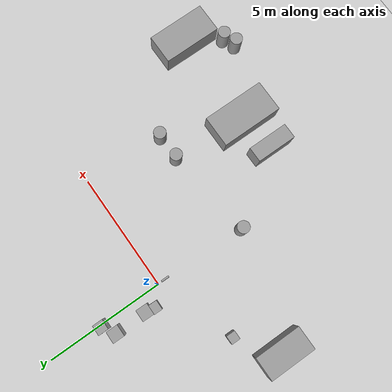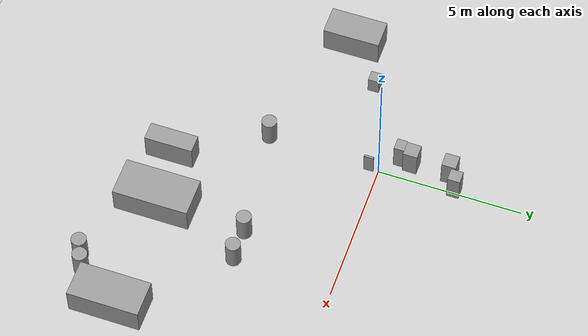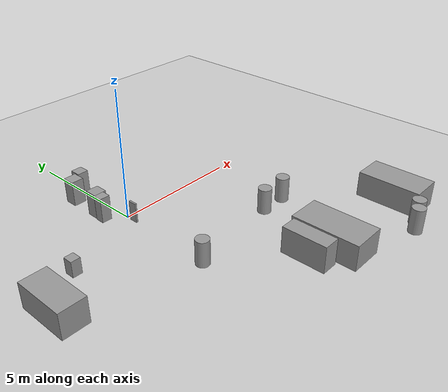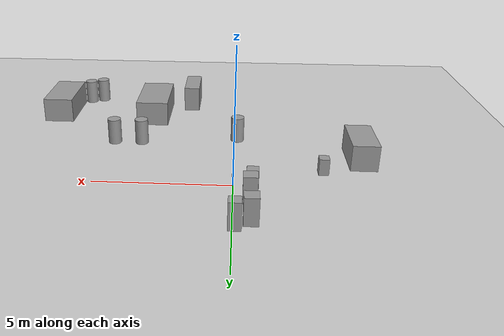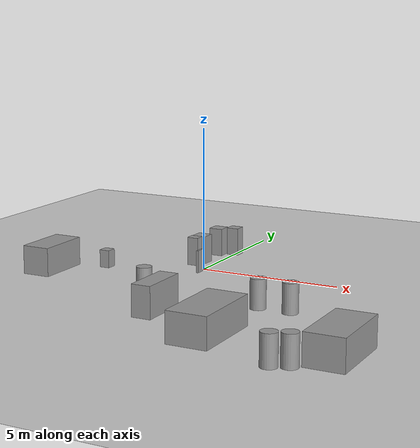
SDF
<sdf version="1.9">
 <world name="default">
  <model name="ground_plane">
   <static>true</static>
   <link name="link">
    <collision name="collision">
     <geometry><plane><normal>0 0 1</normal><size>100 100</size></plane></geometry>
     <surface><friction><ode><mu>100</mu><mu2>50</mu2></ode></friction></surface>
    </collision>
    <visual name="visual">
     <cast_shadows>false</cast_shadows>
     <geometry><plane><normal>0 0 1</normal><size>100 100</size></plane></geometry>
     <material>
      <script><uri>file://media/materials/scripts/gazebo.material</uri><name>Gazebo/Grey</name></script>
     </material>
    </visual>
   </link>
  </model>
  <model name="cma_gaveteiro_pequeno_0">
   <link name="link_0">
    <pose>0.25617400000000001 1.2505500000000001 0.5 0 0 0</pose>
    <inertial>
     <mass>0.18718599999999999</mass>
     <inertia>
      <ixx>0.018509999999999999</ixx>
      <ixy>0</ixy>
      <ixz>0</ixz>
      <iyy>0.018527600000000002</iyy>
      <iyz>0</iyz>
      <izz>0.00583981</izz>
     </inertia>
    </inertial>
    <visual name="visual">
     <geometry><box><size>0.43331700000000001 0.432002 1</size></box></geometry>
     <material>
      <lighting>true</lighting>
      <script><uri>file://media/materials/scripts/gazebo.material</uri><name>Gazebo/Grey</name></script>
      <ambient>0.300000012 0.300000012 0.300000012 1</ambient>
      <diffuse>0.699999988 0.699999988 0.699999988 1</diffuse>
      <specular>0.00999999978 0.00999999978 0.00999999978 1</specular>
      <emissive>0 0 0 1</emissive>
     </material>
    </visual>
    <collision name="collision">
     <geometry><box><size>0.43331700000000001 0.432002 1</size></box></geometry>
     <surface>
      <friction>
       <ode><mu>1</mu><mu2>1</mu2><fdir1>0 0 0</fdir1><slip1>0</slip1><slip2>0</slip2></ode>
       <torsional>
        <coefficient>1</coefficient>
        <patch_radius>0</patch_radius>
        <surface_radius>0</surface_radius>
        <use_patch_radius>true</use_patch_radius>
        <ode><slip>0</slip></ode>
       </torsional>
      </friction>
      <bounce><restitution_coefficient>0</restitution_coefficient><threshold>1000000</threshold></bounce>
      <contact>
       <collide_without_contact>false</collide_without_contact>
       <collide_without_contact_bitmask>1</collide_without_contact_bitmask>
       <collide_bitmask>1</collide_bitmask>
       <ode>
        <soft_cfm>0</soft_cfm>
        <soft_erp>0.20000000000000001</soft_erp>
        <kp>10000000000000</kp>
        <kd>1</kd>
        <max_vel>0.01</max_vel>
        <min_depth>0</min_depth>
       </ode>
       <bullet>
        <split_impulse>true</split_impulse>
        <split_impulse_penetration_threshold>-0.01</split_impulse_penetration_threshold>
        <soft_cfm>0</soft_cfm>
        <soft_erp>0.20000000000000001</soft_erp>
        <kp>10000000000000</kp>
        <kd>1</kd>
       </bullet>
      </contact>
     </surface>
    </collision>
   </link>
   <static>false</static>
   <pose>-0.33608399999999999 1.39513 5.0000000000000004e-06 -4.0000000000000007e-06 6.000000000000001e-06 -9.0000000000000019e-05</pose>
  </model>
  <model name="cma_gaveteiro">
   <link name="link_0">
    <pose>0 3.9999999999999998e-06 0 0 0 0</pose>
    <inertial>
     <mass>0.245086</mass>
     <inertia>
      <ixx>0.025418</ixx>
      <ixy>0</ixy>
      <ixz>0</ixz>
      <iyy>0.025441100000000001</iyy>
      <iyz>0</iyz>
      <izz>0.010011300000000001</izz>
     </inertia>
    </inertial>
    <visual name="visual">
     <geometry><box><size>0.49565700000000001 0.49449100000000001 1</size></box></geometry>
     <material>
      <lighting>true</lighting>
      <script><uri>file://media/materials/scripts/gazebo.material</uri><name>Gazebo/Grey</name></script>
      <ambient>0.300000012 0.300000012 0.300000012 1</ambient>
      <diffuse>0.699999988 0.699999988 0.699999988 1</diffuse>
      <specular>0.00999999978 0.00999999978 0.00999999978 1</specular>
      <emissive>0 0 0 1</emissive>
     </material>
    </visual>
    <collision name="collision">
     <geometry><box><size>0.49565700000000001 0.49449100000000001 1</size></box></geometry>
     <surface>
      <friction>
       <ode><mu>1</mu><mu2>1</mu2><fdir1>0 0 0</fdir1><slip1>0</slip1><slip2>0</slip2></ode>
       <torsional>
        <coefficient>1</coefficient>
        <patch_radius>0</patch_radius>
        <surface_radius>0</surface_radius>
        <use_patch_radius>true</use_patch_radius>
        <ode><slip>0</slip></ode>
       </torsional>
      </friction>
      <bounce><restitution_coefficient>0</restitution_coefficient><threshold>1000000</threshold></bounce>
      <contact>
       <collide_without_contact>false</collide_without_contact>
       <collide_without_contact_bitmask>1</collide_without_contact_bitmask>
       <collide_bitmask>1</collide_bitmask>
       <ode>
        <soft_cfm>0</soft_cfm>
        <soft_erp>0.20000000000000001</soft_erp>
        <kp>10000000000000</kp>
        <kd>1</kd>
        <max_vel>0.01</max_vel>
        <min_depth>0</min_depth>
       </ode>
       <bullet>
        <split_impulse>true</split_impulse>
        <split_impulse_penetration_threshold>-0.01</split_impulse_penetration_threshold>
        <soft_cfm>0</soft_cfm>
        <soft_erp>0.20000000000000001</soft_erp>
        <kp>10000000000000</kp>
        <kd>1</kd>
       </bullet>
      </contact>
     </surface>
    </collision>
   </link>
   <static>false</static>
   <pose>-0.59198399999999995 2.32619 0.50000100000000003 4.9999999999999996e-06 0 0.00034099999999999999</pose>
  </model>
  <model name="cma_gaveteiro_0">
   <link name="link_0">
    <pose>0 3.9999999999999998e-06 0 0 0 0</pose>
    <inertial>
     <mass>0.245086</mass>
     <inertia>
      <ixx>0.025418</ixx>
      <ixy>0</ixy>
      <ixz>0</ixz>
      <iyy>0.025441100000000001</iyy>
      <iyz>0</iyz>
      <izz>0.010011300000000001</izz>
     </inertia>
    </inertial>
    <visual name="visual">
     <geometry><box><size>0.49565700000000001 0.49449100000000001 1</size></box></geometry>
     <material>
      <lighting>true</lighting>
      <script><uri>file://media/materials/scripts/gazebo.material</uri><name>Gazebo/Grey</name></script>
      <ambient>0.300000012 0.300000012 0.300000012 1</ambient>
      <diffuse>0.699999988 0.699999988 0.699999988 1</diffuse>
      <specular>0.00999999978 0.00999999978 0.00999999978 1</specular>
      <emissive>0 0 0 1</emissive>
     </material>
    </visual>
    <collision name="collision">
     <geometry><box><size>0.49565700000000001 0.49449100000000001 1</size></box></geometry>
     <surface>
      <friction>
       <ode><mu>1</mu><mu2>1</mu2><fdir1>0 0 0</fdir1><slip1>0</slip1><slip2>0</slip2></ode>
       <torsional>
        <coefficient>1</coefficient>
        <patch_radius>0</patch_radius>
        <surface_radius>0</surface_radius>
        <use_patch_radius>true</use_patch_radius>
        <ode><slip>0</slip></ode>
       </torsional>
      </friction>
      <bounce><restitution_coefficient>0</restitution_coefficient><threshold>1000000</threshold></bounce>
      <contact>
       <collide_without_contact>false</collide_without_contact>
       <collide_without_contact_bitmask>1</collide_without_contact_bitmask>
       <collide_bitmask>1</collide_bitmask>
       <ode>
        <soft_cfm>0</soft_cfm>
        <soft_erp>0.20000000000000001</soft_erp>
        <kp>10000000000000</kp>
        <kd>1</kd>
        <max_vel>0.01</max_vel>
        <min_depth>0</min_depth>
       </ode>
       <bullet>
        <split_impulse>true</split_impulse>
        <split_impulse_penetration_threshold>-0.01</split_impulse_penetration_threshold>
        <soft_cfm>0</soft_cfm>
        <soft_erp>0.20000000000000001</soft_erp>
        <kp>10000000000000</kp>
        <kd>1</kd>
       </bullet>
      </contact>
     </surface>
    </collision>
   </link>
   <static>false</static>
   <pose>-0.577901 0.98403700000000005 0.499998 -1.3234889801271959e-23 -7.9999999999999996e-06 -0.014385999999999999</pose>
  </model>
  <model name="cma_sofa2">
   <link name="link_0">
    <pose>-4.6680000000000001 -2.0060099999999998 0.5 0 0 0</pose>
    <inertial>
     <mass>1.9868300000000001</mass>
     <inertia>
      <ixx>0.81914900000000002</ixx>
      <ixy>0</ixy>
      <ixz>0</ixz>
      <iyy>0.33113799999999999</iyy>
      <iyz>0</iyz>
      <izz>0.81914900000000002</izz>
     </inertia>
    </inertial>
    <visual name="visual">
     <geometry><box><size>1 1.98682 1</size></box></geometry>
     <material>
      <lighting>true</lighting>
      <script><uri>file://media/materials/scripts/gazebo.material</uri><name>Gazebo/Grey</name></script>
      <ambient>0.300000012 0.300000012 0.300000012 1</ambient>
      <diffuse>0.699999988 0.699999988 0.699999988 1</diffuse>
      <specular>0.00999999978 0.00999999978 0.00999999978 1</specular>
      <emissive>0 0 0 1</emissive>
     </material>
    </visual>
    <collision name="collision">
     <geometry><box><size>1 1.98682 1</size></box></geometry>
     <surface>
      <friction>
       <ode><mu>1</mu><mu2>1</mu2><fdir1>0 0 0</fdir1><slip1>0</slip1><slip2>0</slip2></ode>
       <torsional>
        <coefficient>1</coefficient>
        <patch_radius>0</patch_radius>
        <surface_radius>0</surface_radius>
        <use_patch_radius>true</use_patch_radius>
        <ode><slip>0</slip></ode>
       </torsional>
      </friction>
      <bounce><restitution_coefficient>0</restitution_coefficient><threshold>1000000</threshold></bounce>
      <contact>
       <collide_without_contact>false</collide_without_contact>
       <collide_without_contact_bitmask>1</collide_without_contact_bitmask>
       <collide_bitmask>1</collide_bitmask>
       <ode>
        <soft_cfm>0</soft_cfm>
        <soft_erp>0.20000000000000001</soft_erp>
        <kp>10000000000000</kp>
        <kd>1</kd>
        <max_vel>0.01</max_vel>
        <min_depth>0</min_depth>
       </ode>
       <bullet>
        <split_impulse>true</split_impulse>
        <split_impulse_penetration_threshold>-0.01</split_impulse_penetration_threshold>
        <soft_cfm>0</soft_cfm>
        <soft_erp>0.20000000000000001</soft_erp>
        <kp>10000000000000</kp>
        <kd>1</kd>
       </bullet>
      </contact>
     </surface>
    </collision>
   </link>
   <static>false</static>
   <pose>-0.095343999999999998 -0.40776899999999999 0 0 0 3.0000000000000001e-06</pose>
  </model>
  <model name="cma_apoio_s">
   <link name="link_1">
    <pose>-1.9376 -3.4655100000000001 0.5 0 0 0</pose>
    <inertial>
     <mass>0.087846300000000002</mass>
     <inertia>
      <ixx>0.0039269600000000002</ixx>
      <ixy>0</ixy>
      <ixz>0</ixz>
      <iyy>0.0038535599999999998</iyy>
      <iyz>0</iyz>
      <izz>0.0020587000000000001</izz>
     </inertia>
    </inertial>
    <visual name="visual">
     <geometry><box><size>0.36822300000000002 0.38159199999999999 0.62511799999999995</size></box></geometry>
     <material>
      <lighting>true</lighting>
      <script><uri>file://media/materials/scripts/gazebo.material</uri><name>Gazebo/Grey</name></script>
      <ambient>0.300000012 0.300000012 0.300000012 1</ambient>
      <diffuse>0.699999988 0.699999988 0.699999988 1</diffuse>
      <specular>0.00999999978 0.00999999978 0.00999999978 1</specular>
      <emissive>0 0 0 1</emissive>
     </material>
    </visual>
    <collision name="collision">
     <geometry><box><size>0.36822300000000002 0.38159199999999999 0.62511799999999995</size></box></geometry>
     <surface>
      <friction>
       <ode><mu>1</mu><mu2>1</mu2><fdir1>0 0 0</fdir1><slip1>0</slip1><slip2>0</slip2></ode>
       <torsional>
        <coefficient>1</coefficient>
        <patch_radius>0</patch_radius>
        <surface_radius>0</surface_radius>
        <use_patch_radius>true</use_patch_radius>
        <ode><slip>0</slip></ode>
       </torsional>
      </friction>
      <bounce><restitution_coefficient>0</restitution_coefficient><threshold>1000000</threshold></bounce>
      <contact>
       <collide_without_contact>false</collide_without_contact>
       <collide_without_contact_bitmask>1</collide_without_contact_bitmask>
       <collide_bitmask>1</collide_bitmask>
       <ode>
        <soft_cfm>0</soft_cfm>
        <soft_erp>0.20000000000000001</soft_erp>
        <kp>10000000000000</kp>
        <kd>1</kd>
        <max_vel>0.01</max_vel>
        <min_depth>0</min_depth>
       </ode>
       <bullet>
        <split_impulse>true</split_impulse>
        <split_impulse_penetration_threshold>-0.01</split_impulse_penetration_threshold>
        <soft_cfm>0</soft_cfm>
        <soft_erp>0.20000000000000001</soft_erp>
        <kp>10000000000000</kp>
        <kd>1</kd>
       </bullet>
      </contact>
     </surface>
    </collision>
   </link>
   <static>false</static>
   <pose>-1.3090999999999999 2.27101 -0.187442 -1.0000000000000002e-06 -1.0000000000000002e-06 -0.00081899999999999996</pose>
  </model>
  <model name="cma_sofa_ch2">
   <link name="link_0">
    <pose>7.5415200000000002 -9.0606100000000005 0.5 0 0 0</pose>
    <inertial>
     <mass>3.05287</mass>
     <inertia>
      <ixx>1.79053</ixx>
      <ixy>0</ixy>
      <ixz>0</ixz>
      <iyy>0.64708900000000003</iyy>
      <iyz>0</iyz>
      <izz>1.9288099999999999</izz>
     </inertia>
    </inertial>
    <visual name="visual">
     <geometry><box><size>1.2423500000000001 2.45729 1</size></box></geometry>
     <material>
      <lighting>true</lighting>
      <script><uri>file://media/materials/scripts/gazebo.material</uri><name>Gazebo/Grey</name></script>
      <ambient>0.300000012 0.300000012 0.300000012 1</ambient>
      <diffuse>0.699999988 0.699999988 0.699999988 1</diffuse>
      <specular>0.00999999978 0.00999999978 0.00999999978 1</specular>
      <emissive>0 0 0 1</emissive>
     </material>
    </visual>
    <collision name="collision">
     <geometry><box><size>1.2423500000000001 2.45729 1</size></box></geometry>
     <surface>
      <friction>
       <ode><mu>1</mu><mu2>1</mu2><fdir1>0 0 0</fdir1><slip1>0</slip1><slip2>0</slip2></ode>
       <torsional>
        <coefficient>1</coefficient>
        <patch_radius>0</patch_radius>
        <surface_radius>0</surface_radius>
        <use_patch_radius>true</use_patch_radius>
        <ode><slip>0</slip></ode>
       </torsional>
      </friction>
      <bounce><restitution_coefficient>0</restitution_coefficient><threshold>1000000</threshold></bounce>
      <contact>
       <collide_without_contact>false</collide_without_contact>
       <collide_without_contact_bitmask>1</collide_without_contact_bitmask>
       <collide_bitmask>1</collide_bitmask>
       <ode>
        <soft_cfm>0</soft_cfm>
        <soft_erp>0.20000000000000001</soft_erp>
        <kp>10000000000000</kp>
        <kd>1</kd>
        <max_vel>0.01</max_vel>
        <min_depth>0</min_depth>
       </ode>
       <bullet>
        <split_impulse>true</split_impulse>
        <split_impulse_penetration_threshold>-0.01</split_impulse_penetration_threshold>
        <soft_cfm>0</soft_cfm>
        <soft_erp>0.20000000000000001</soft_erp>
        <kp>10000000000000</kp>
        <kd>1</kd>
       </bullet>
      </contact>
     </surface>
    </collision>
   </link>
   <model name="cma_armarioL">
    <link name="link_0">
     <pose>3.6622599999999998 -6.1673499999999999 0.5 0 0 0</pose>
     <inertial>
      <mass>1.0482100000000001</mass>
      <inertia>
       <ixx>0.33087299999999997</ixx>
       <ixy>0</ixy>
       <ixz>0</ixz>
       <iyy>0.121777</iyy>
       <iyz>0</iyz>
       <izz>0.277949</izz>
      </inertia>
     </inertial>
     <visual name="visual">
      <geometry><box><size>0.62779200000000002 1.6697200000000001 1</size></box></geometry>
      <material>
       <lighting>true</lighting>
       <script><uri>file://media/materials/scripts/gazebo.material</uri><name>Gazebo/Grey</name></script>
       <ambient>0.300000012 0.300000012 0.300000012 1</ambient>
       <diffuse>0.699999988 0.699999988 0.699999988 1</diffuse>
       <specular>0.00999999978 0.00999999978 0.00999999978 1</specular>
       <emissive>0 0 0 1</emissive>
      </material>
     </visual>
     <collision name="collision">
      <geometry><box><size>0.62779200000000002 1.6697200000000001 1</size></box></geometry>
      <surface>
       <friction>
        <ode><mu>1</mu><mu2>1</mu2><fdir1>0 0 0</fdir1><slip1>0</slip1><slip2>0</slip2></ode>
        <torsional>
         <coefficient>1</coefficient>
         <patch_radius>0</patch_radius>
         <surface_radius>0</surface_radius>
         <use_patch_radius>true</use_patch_radius>
         <ode><slip>0</slip></ode>
        </torsional>
       </friction>
       <bounce><restitution_coefficient>0</restitution_coefficient><threshold>1000000</threshold></bounce>
       <contact>
        <collide_without_contact>false</collide_without_contact>
        <collide_without_contact_bitmask>1</collide_without_contact_bitmask>
        <collide_bitmask>1</collide_bitmask>
        <ode>
         <soft_cfm>0</soft_cfm>
         <soft_erp>0.20000000000000001</soft_erp>
         <kp>10000000000000</kp>
         <kd>1</kd>
         <max_vel>0.01</max_vel>
         <min_depth>0</min_depth>
        </ode>
        <bullet>
         <split_impulse>true</split_impulse>
         <split_impulse_penetration_threshold>-0.01</split_impulse_penetration_threshold>
         <soft_cfm>0</soft_cfm>
         <soft_erp>0.20000000000000001</soft_erp>
         <kp>10000000000000</kp>
         <kd>1</kd>
        </bullet>
       </contact>
      </surface>
     </collision>
    </link>
    <static>false</static>
    <pose>-1.9180299999999999 -2.9201100000000002 0.5 0 0 0</pose>
   </model>
   <model name="cma_cesto">
    <link name="link_1">
     <pose>-0.32965899999999998 -1.55494 0 0 0 0</pose>
     <inertial>
      <mass>0.267897</mass>
      <inertia>
       <ixx>0.026810199999999999</ixx>
       <ixy>0</ixy>
       <ixz>0</ixz>
       <iyy>0.026810199999999999</iyy>
       <iyz>0</iyz>
       <izz>0.0089711099999999992</izz>
      </inertia>
     </inertial>
     <visual name="visual">
      <geometry><cylinder><radius>0.25879200000000002</radius><length>1</length></cylinder></geometry>
      <material>
       <lighting>true</lighting>
       <script><uri>file://media/materials/scripts/gazebo.material</uri><name>Gazebo/Grey</name></script>
       <ambient>0.300000012 0.300000012 0.300000012 1</ambient>
       <diffuse>0.699999988 0.699999988 0.699999988 1</diffuse>
       <specular>0.00999999978 0.00999999978 0.00999999978 1</specular>
       <emissive>0 0 0 1</emissive>
      </material>
     </visual>
     <collision name="collision">
      <geometry><cylinder><radius>0.25879200000000002</radius><length>1</length></cylinder></geometry>
      <surface>
       <friction>
        <ode><mu>1</mu><mu2>1</mu2><fdir1>0 0 0</fdir1><slip1>0</slip1><slip2>0</slip2></ode>
        <torsional>
         <coefficient>1</coefficient>
         <patch_radius>0</patch_radius>
         <surface_radius>0</surface_radius>
         <use_patch_radius>true</use_patch_radius>
         <ode><slip>0</slip></ode>
        </torsional>
       </friction>
       <bounce><restitution_coefficient>0</restitution_coefficient><threshold>1000000</threshold></bounce>
       <contact>
        <collide_without_contact>false</collide_without_contact>
        <collide_without_contact_bitmask>1</collide_without_contact_bitmask>
        <collide_bitmask>1</collide_bitmask>
        <ode>
         <soft_cfm>0</soft_cfm>
         <soft_erp>0.20000000000000001</soft_erp>
         <kp>10000000000000</kp>
         <kd>1</kd>
         <max_vel>0.01</max_vel>
         <min_depth>0</min_depth>
        </ode>
        <bullet>
         <split_impulse>true</split_impulse>
         <split_impulse_penetration_threshold>-0.01</split_impulse_penetration_threshold>
         <soft_cfm>0</soft_cfm>
         <soft_erp>0.20000000000000001</soft_erp>
         <kp>10000000000000</kp>
         <kd>1</kd>
        </bullet>
       </contact>
      </surface>
     </collision>
    </link>
    <static>false</static>
    <pose>6.9793500000000002 -8.8850899999999999 0.5 0 0 0</pose>
   </model>
   <model name="cma_cesto_0">
    <link name="link_1">
     <pose>-0.32965899999999998 -1.55494 0 0 0 0</pose>
     <inertial>
      <mass>0.267897</mass>
      <inertia>
       <ixx>0.026810199999999999</ixx>
       <ixy>0</ixy>
       <ixz>0</ixz>
       <iyy>0.026810199999999999</iyy>
       <iyz>0</iyz>
       <izz>0.0089711099999999992</izz>
      </inertia>
     </inertial>
     <visual name="visual">
      <geometry><cylinder><radius>0.25879200000000002</radius><length>1</length></cylinder></geometry>
      <material>
       <lighting>true</lighting>
       <script><uri>file://media/materials/scripts/gazebo.material</uri><name>Gazebo/Grey</name></script>
       <ambient>0.300000012 0.300000012 0.300000012 1</ambient>
       <diffuse>0.699999988 0.699999988 0.699999988 1</diffuse>
       <specular>0.00999999978 0.00999999978 0.00999999978 1</specular>
       <emissive>0 0 0 1</emissive>
      </material>
     </visual>
     <collision name="collision">
      <geometry><cylinder><radius>0.25879200000000002</radius><length>1</length></cylinder></geometry>
      <surface>
       <friction>
        <ode><mu>1</mu><mu2>1</mu2><fdir1>0 0 0</fdir1><slip1>0</slip1><slip2>0</slip2></ode>
        <torsional>
         <coefficient>1</coefficient>
         <patch_radius>0</patch_radius>
         <surface_radius>0</surface_radius>
         <use_patch_radius>true</use_patch_radius>
         <ode><slip>0</slip></ode>
        </torsional>
       </friction>
       <bounce><restitution_coefficient>0</restitution_coefficient><threshold>1000000</threshold></bounce>
       <contact>
        <collide_without_contact>false</collide_without_contact>
        <collide_without_contact_bitmask>1</collide_without_contact_bitmask>
        <collide_bitmask>1</collide_bitmask>
        <ode>
         <soft_cfm>0</soft_cfm>
         <soft_erp>0.20000000000000001</soft_erp>
         <kp>10000000000000</kp>
         <kd>1</kd>
         <max_vel>0.01</max_vel>
         <min_depth>0</min_depth>
        </ode>
        <bullet>
         <split_impulse>true</split_impulse>
         <split_impulse_penetration_threshold>-0.01</split_impulse_penetration_threshold>
         <soft_cfm>0</soft_cfm>
         <soft_erp>0.20000000000000001</soft_erp>
         <kp>10000000000000</kp>
         <kd>1</kd>
        </bullet>
       </contact>
      </surface>
     </collision>
    </link>
    <static>false</static>
    <pose>6.4663000000000004 -9.1192200000000003 0.5 0 0 0</pose>
   </model>
   <model name="cma_cesto_1">
    <link name="link_1">
     <pose>-0.32965899999999998 -1.55494 0 0 0 0</pose>
     <inertial>
      <mass>0.267897</mass>
      <inertia>
       <ixx>0.026810199999999999</ixx>
       <ixy>0</ixy>
       <ixz>0</ixz>
       <iyy>0.026810199999999999</iyy>
       <iyz>0</iyz>
       <izz>0.0089711099999999992</izz>
      </inertia>
     </inertial>
     <visual name="visual">
      <geometry><cylinder><radius>0.25879200000000002</radius><length>1</length></cylinder></geometry>
      <material>
       <lighting>true</lighting>
       <script><uri>file://media/materials/scripts/gazebo.material</uri><name>Gazebo/Grey</name></script>
       <ambient>0.300000012 0.300000012 0.300000012 1</ambient>
       <diffuse>0.699999988 0.699999988 0.699999988 1</diffuse>
       <specular>0.00999999978 0.00999999978 0.00999999978 1</specular>
       <emissive>0 0 0 1</emissive>
      </material>
     </visual>
     <collision name="collision">
      <geometry><cylinder><radius>0.25879200000000002</radius><length>1</length></cylinder></geometry>
      <surface>
       <friction>
        <ode><mu>1</mu><mu2>1</mu2><fdir1>0 0 0</fdir1><slip1>0</slip1><slip2>0</slip2></ode>
        <torsional>
         <coefficient>1</coefficient>
         <patch_radius>0</patch_radius>
         <surface_radius>0</surface_radius>
         <use_patch_radius>true</use_patch_radius>
         <ode><slip>0</slip></ode>
        </torsional>
       </friction>
       <bounce><restitution_coefficient>0</restitution_coefficient><threshold>1000000</threshold></bounce>
       <contact>
        <collide_without_contact>false</collide_without_contact>
        <collide_without_contact_bitmask>1</collide_without_contact_bitmask>
        <collide_bitmask>1</collide_bitmask>
        <ode>
         <soft_cfm>0</soft_cfm>
         <soft_erp>0.20000000000000001</soft_erp>
         <kp>10000000000000</kp>
         <kd>1</kd>
         <max_vel>0.01</max_vel>
         <min_depth>0</min_depth>
        </ode>
        <bullet>
         <split_impulse>true</split_impulse>
         <split_impulse_penetration_threshold>-0.01</split_impulse_penetration_threshold>
         <soft_cfm>0</soft_cfm>
         <soft_erp>0.20000000000000001</soft_erp>
         <kp>10000000000000</kp>
         <kd>1</kd>
        </bullet>
       </contact>
      </surface>
     </collision>
    </link>
    <static>false</static>
    <pose>0.091229000000000005 -4.78918 0.5 0 0 0</pose>
   </model>
   <model name="cma_cesto_2">
    <link name="link_1">
     <pose>-0.32965899999999998 -1.55494 0 0 0 0</pose>
     <inertial>
      <mass>0.267897</mass>
      <inertia>
       <ixx>0.026810199999999999</ixx>
       <ixy>0</ixy>
       <ixz>0</ixz>
       <iyy>0.026810199999999999</iyy>
       <iyz>0</iyz>
       <izz>0.0089711099999999992</izz>
      </inertia>
     </inertial>
     <visual name="visual">
      <geometry><cylinder><radius>0.25879200000000002</radius><length>1</length></cylinder></geometry>
      <material>
       <lighting>true</lighting>
       <script><uri>file://media/materials/scripts/gazebo.material</uri><name>Gazebo/Grey</name></script>
       <ambient>0.300000012 0.300000012 0.300000012 1</ambient>
       <diffuse>0.699999988 0.699999988 0.699999988 1</diffuse>
       <specular>0.00999999978 0.00999999978 0.00999999978 1</specular>
       <emissive>0 0 0 1</emissive>
      </material>
     </visual>
     <collision name="collision">
      <geometry><cylinder><radius>0.25879200000000002</radius><length>1</length></cylinder></geometry>
      <surface>
       <friction>
        <ode><mu>1</mu><mu2>1</mu2><fdir1>0 0 0</fdir1><slip1>0</slip1><slip2>0</slip2></ode>
        <torsional>
         <coefficient>1</coefficient>
         <patch_radius>0</patch_radius>
         <surface_radius>0</surface_radius>
         <use_patch_radius>true</use_patch_radius>
         <ode><slip>0</slip></ode>
        </torsional>
       </friction>
       <bounce><restitution_coefficient>0</restitution_coefficient><threshold>1000000</threshold></bounce>
       <contact>
        <collide_without_contact>false</collide_without_contact>
        <collide_without_contact_bitmask>1</collide_without_contact_bitmask>
        <collide_bitmask>1</collide_bitmask>
        <ode>
         <soft_cfm>0</soft_cfm>
         <soft_erp>0.20000000000000001</soft_erp>
         <kp>10000000000000</kp>
         <kd>1</kd>
         <max_vel>0.01</max_vel>
         <min_depth>0</min_depth>
        </ode>
        <bullet>
         <split_impulse>true</split_impulse>
         <split_impulse_penetration_threshold>-0.01</split_impulse_penetration_threshold>
         <soft_cfm>0</soft_cfm>
         <soft_erp>0.20000000000000001</soft_erp>
         <kp>10000000000000</kp>
         <kd>1</kd>
        </bullet>
       </contact>
      </surface>
     </collision>
    </link>
    <static>false</static>
    <pose>5.00434 -4.3001500000000004 0.5 0 0 0</pose>
   </model>
   <model name="cma_cesto_3">
    <link name="link_1">
     <pose>-0.32965899999999998 -1.55494 0 0 0 0</pose>
     <inertial>
      <mass>0.267897</mass>
      <inertia>
       <ixx>0.026810199999999999</ixx>
       <ixy>0</ixy>
       <ixz>0</ixz>
       <iyy>0.026810199999999999</iyy>
       <iyz>0</iyz>
       <izz>0.0089711099999999992</izz>
      </inertia>
     </inertial>
     <visual name="visual">
      <geometry><cylinder><radius>0.25879200000000002</radius><length>1</length></cylinder></geometry>
      <material>
       <lighting>true</lighting>
       <script><uri>file://media/materials/scripts/gazebo.material</uri><name>Gazebo/Grey</name></script>
       <ambient>0.300000012 0.300000012 0.300000012 1</ambient>
       <diffuse>0.699999988 0.699999988 0.699999988 1</diffuse>
       <specular>0.00999999978 0.00999999978 0.00999999978 1</specular>
       <emissive>0 0 0 1</emissive>
      </material>
     </visual>
     <collision name="collision">
      <geometry><cylinder><radius>0.25879200000000002</radius><length>1</length></cylinder></geometry>
      <surface>
       <friction>
        <ode><mu>1</mu><mu2>1</mu2><fdir1>0 0 0</fdir1><slip1>0</slip1><slip2>0</slip2></ode>
        <torsional>
         <coefficient>1</coefficient>
         <patch_radius>0</patch_radius>
         <surface_radius>0</surface_radius>
         <use_patch_radius>true</use_patch_radius>
         <ode><slip>0</slip></ode>
        </torsional>
       </friction>
       <bounce><restitution_coefficient>0</restitution_coefficient><threshold>1000000</threshold></bounce>
       <contact>
        <collide_without_contact>false</collide_without_contact>
        <collide_without_contact_bitmask>1</collide_without_contact_bitmask>
        <collide_bitmask>1</collide_bitmask>
        <ode>
         <soft_cfm>0</soft_cfm>
         <soft_erp>0.20000000000000001</soft_erp>
         <kp>10000000000000</kp>
         <kd>1</kd>
         <max_vel>0.01</max_vel>
         <min_depth>0</min_depth>
        </ode>
        <bullet>
         <split_impulse>true</split_impulse>
         <split_impulse_penetration_threshold>-0.01</split_impulse_penetration_threshold>
         <soft_cfm>0</soft_cfm>
         <soft_erp>0.20000000000000001</soft_erp>
         <kp>10000000000000</kp>
         <kd>1</kd>
        </bullet>
       </contact>
      </surface>
     </collision>
    </link>
    <static>false</static>
    <pose>3.9176799999999998 -4.3154000000000003 0.5 0 0 0</pose>
   </model>
   <model name="cma_sofa_ch1">
    <link name="link_0">
     <pose>-3.9999999999999998e-06 5.0000000000000004e-06 0 0 0 0</pose>
     <inertial>
      <mass>3.5119199999999999</mass>
      <inertia>
       <ixx>2.3083100000000001</ixx>
       <ixy>0</ixy>
       <ixz>0</ixz>
       <iyy>0.81674599999999997</iyy>
       <iyz>0</iyz>
       <izz>2.5397400000000001</izz>
      </inertia>
     </inertial>
     <visual name="visual">
      <geometry><box><size>1.33823 2.62439 1</size></box></geometry>
      <material>
       <lighting>true</lighting>
       <script><uri>file://media/materials/scripts/gazebo.material</uri><name>Gazebo/Grey</name></script>
       <ambient>0.300000012 0.300000012 0.300000012 1</ambient>
       <diffuse>0.699999988 0.699999988 0.699999988 1</diffuse>
       <specular>0.00999999978 0.00999999978 0.00999999978 1</specular>
       <emissive>0 0 0 1</emissive>
      </material>
     </visual>
     <collision name="collision">
      <geometry><box><size>1.33823 2.62439 1</size></box></geometry>
      <surface>
       <friction>
        <ode><mu>1</mu><mu2>1</mu2><fdir1>0 0 0</fdir1><slip1>0</slip1><slip2>0</slip2></ode>
        <torsional>
         <coefficient>1</coefficient>
         <patch_radius>0</patch_radius>
         <surface_radius>0</surface_radius>
         <use_patch_radius>true</use_patch_radius>
         <ode><slip>0</slip></ode>
        </torsional>
       </friction>
       <bounce><restitution_coefficient>0</restitution_coefficient><threshold>1000000</threshold></bounce>
       <contact>
        <collide_without_contact>false</collide_without_contact>
        <collide_without_contact_bitmask>1</collide_without_contact_bitmask>
        <collide_bitmask>1</collide_bitmask>
        <ode>
         <soft_cfm>0</soft_cfm>
         <soft_erp>0.20000000000000001</soft_erp>
         <kp>10000000000000</kp>
         <kd>1</kd>
         <max_vel>0.01</max_vel>
         <min_depth>0</min_depth>
        </ode>
        <bullet>
         <split_impulse>true</split_impulse>
         <split_impulse_penetration_threshold>-0.01</split_impulse_penetration_threshold>
         <soft_cfm>0</soft_cfm>
         <soft_erp>0.20000000000000001</soft_erp>
         <kp>10000000000000</kp>
         <kd>1</kd>
        </bullet>
       </contact>
      </surface>
     </collision>
    </link>
    <static>false</static>
    <pose>3.4236 -8.9981600000000004 0.5 0 0 0</pose>
   </model>
   <static>false</static>
   <pose>0.11720999999999999 2.42164 0 0 0 0</pose>
  </model>
  <model name="cma_gaveteiro_pequeno_e">
   <link name="link_1">
    <pose>9.9999999999999995e-07 -3.0000000000000001e-06 0 0 0 0</pose>
    <inertial>
     <mass>0.14553199999999999</mass>
     <inertia>
      <ixx>0.0136813</ixx>
      <ixy>0</ixy>
      <ixz>0</ixz>
      <iyy>0.0141327</iyy>
      <iyz>0</iyz>
      <izz>0.0035586599999999999</izz>
     </inertia>
    </inertial>
    <visual name="visual">
     <geometry><box><size>0.40660000000000002 0.35791800000000001 1</size></box></geometry>
     <material>
      <lighting>true</lighting>
      <script><uri>file://media/materials/scripts/gazebo.material</uri><name>Gazebo/Grey</name></script>
      <ambient>0.300000012 0.300000012 0.300000012 1</ambient>
      <diffuse>0.699999988 0.699999988 0.699999988 1</diffuse>
      <specular>0.00999999978 0.00999999978 0.00999999978 1</specular>
      <emissive>0 0 0 1</emissive>
     </material>
    </visual>
    <collision name="collision">
     <geometry><box><size>0.40660000000000002 0.35791800000000001 1</size></box></geometry>
     <surface>
      <friction>
       <ode><mu>1</mu><mu2>1</mu2><fdir1>0 0 0</fdir1><slip1>0</slip1><slip2>0</slip2></ode>
       <torsional>
        <coefficient>1</coefficient>
        <patch_radius>0</patch_radius>
        <surface_radius>0</surface_radius>
        <use_patch_radius>true</use_patch_radius>
        <ode><slip>0</slip></ode>
       </torsional>
      </friction>
      <bounce><restitution_coefficient>0</restitution_coefficient><threshold>1000000</threshold></bounce>
      <contact>
       <collide_without_contact>false</collide_without_contact>
       <collide_without_contact_bitmask>1</collide_without_contact_bitmask>
       <collide_bitmask>1</collide_bitmask>
       <ode>
        <soft_cfm>0</soft_cfm>
        <soft_erp>0.20000000000000001</soft_erp>
        <kp>10000000000000</kp>
        <kd>1</kd>
        <max_vel>0.01</max_vel>
        <min_depth>0</min_depth>
       </ode>
       <bullet>
        <split_impulse>true</split_impulse>
        <split_impulse_penetration_threshold>-0.01</split_impulse_penetration_threshold>
        <soft_cfm>0</soft_cfm>
        <soft_erp>0.20000000000000001</soft_erp>
        <kp>10000000000000</kp>
        <kd>1</kd>
       </bullet>
      </contact>
     </surface>
    </collision>
   </link>
   <static>false</static>
   <pose>-0.65298100000000003 0.55887500000000001 0.49999900000000003 9.9999999999999974e-07 -4.0000000000000007e-06 -0.014385</pose>
  </model>
  <model name="cma_pe_mesa2">
   <link name="link_0">
    <pose>-9.9999999999999995e-07 0 0 0 0 0</pose>
    <inertial>
     <mass>0.0184993</mass>
     <inertia>
      <ixx>0.0011378499999999999</ixx>
      <ixy>0</ixy>
      <ixz>0</ixz>
      <iyy>0.00097356799999999996</iyy>
      <iyz>0</iyz>
      <izz>0.000179385</izz>
     </inertia>
    </inertial>
    <visual name="visual">
     <geometry><box><size>0.070004999999999998 0.33385999999999999 0.79159199999999996</size></box></geometry>
     <material>
      <lighting>true</lighting>
      <script><uri>file://media/materials/scripts/gazebo.material</uri><name>Gazebo/Grey</name></script>
      <ambient>0.300000012 0.300000012 0.300000012 1</ambient>
      <diffuse>0.699999988 0.699999988 0.699999988 1</diffuse>
      <specular>0.00999999978 0.00999999978 0.00999999978 1</specular>
      <emissive>0 0 0 1</emissive>
     </material>
    </visual>
    <collision name="collision">
     <geometry><box><size>0.070004999999999998 0.33385999999999999 0.79159199999999996</size></box></geometry>
     <surface>
      <friction>
       <ode><mu>1</mu><mu2>1</mu2><fdir1>0 0 0</fdir1><slip1>0</slip1><slip2>0</slip2></ode>
       <torsional>
        <coefficient>1</coefficient>
        <patch_radius>0</patch_radius>
        <surface_radius>0</surface_radius>
        <use_patch_radius>true</use_patch_radius>
        <ode><slip>0</slip></ode>
       </torsional>
      </friction>
      <bounce><restitution_coefficient>0</restitution_coefficient><threshold>1000000</threshold></bounce>
      <contact>
       <collide_without_contact>false</collide_without_contact>
       <collide_without_contact_bitmask>1</collide_without_contact_bitmask>
       <collide_bitmask>1</collide_bitmask>
       <ode>
        <soft_cfm>0</soft_cfm>
        <soft_erp>0.20000000000000001</soft_erp>
        <kp>10000000000000</kp>
        <kd>1</kd>
        <max_vel>0.01</max_vel>
        <min_depth>0</min_depth>
       </ode>
       <bullet>
        <split_impulse>true</split_impulse>
        <split_impulse_penetration_threshold>-0.01</split_impulse_penetration_threshold>
        <soft_cfm>0</soft_cfm>
        <soft_erp>0.20000000000000001</soft_erp>
        <kp>10000000000000</kp>
        <kd>1</kd>
       </bullet>
      </contact>
     </surface>
    </collision>
   </link>
   <static>false</static>
   <pose>0.0086370000000000006 -0.34209000000000001 0.39579599999999998 0 0 -0.0010269999999999999</pose>
  </model>
 </world>
</sdf>
